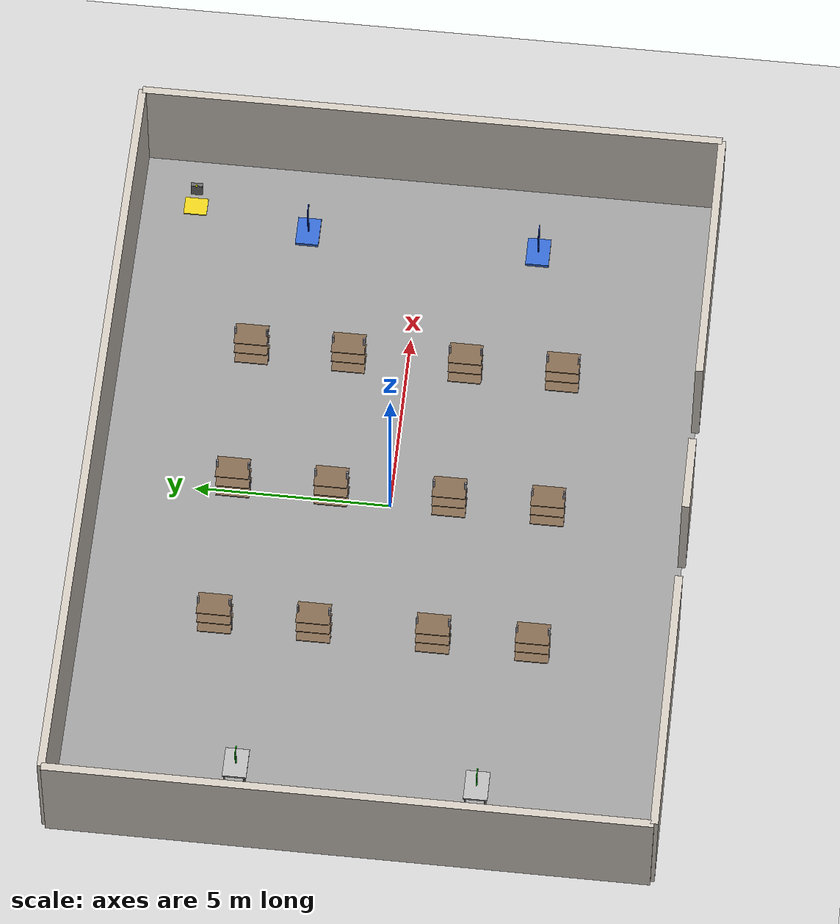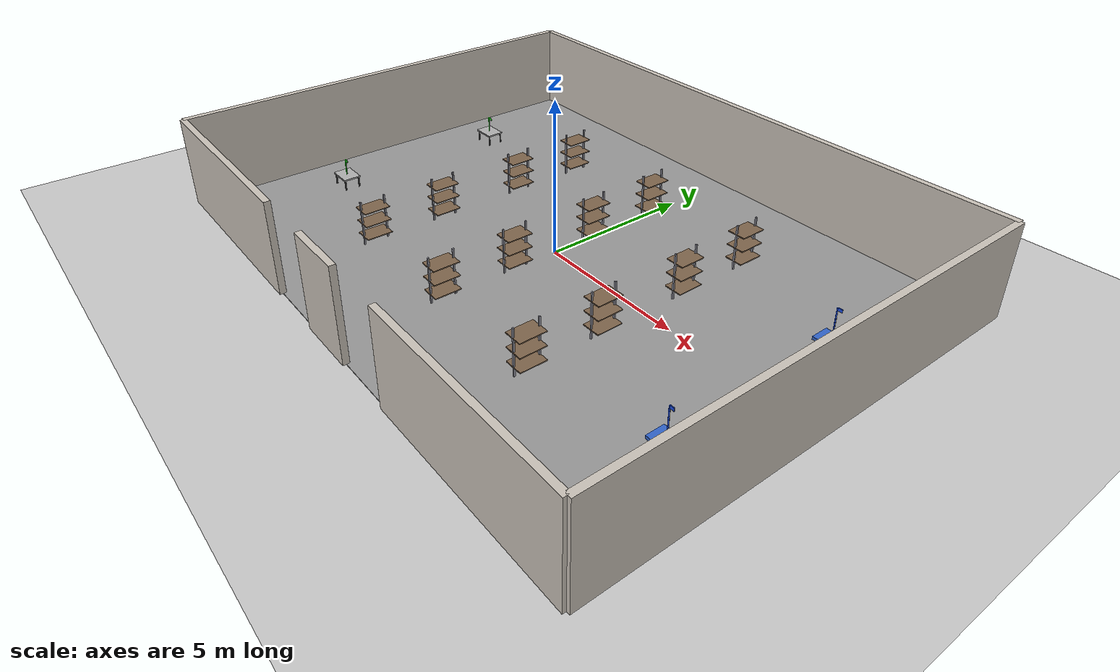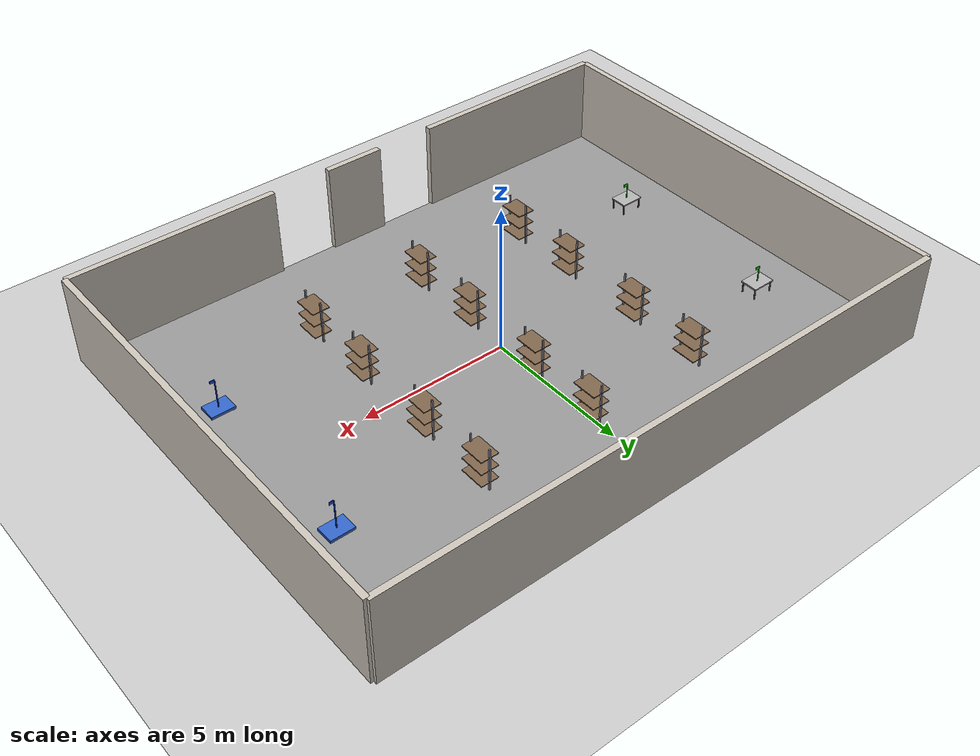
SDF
<?xml version="1.0"?>
<sdf version="1.6">
  <world name="warehouse">

    <!-- Physics -->
    <physics type="ode">
      <max_step_size>0.001</max_step_size>
      <real_time_factor>1.0</real_time_factor>
      <real_time_update_rate>1000</real_time_update_rate>
    </physics>

    <!-- Lighting -->
    <light name="sun" type="directional">
      <cast_shadows>true</cast_shadows>
      <pose>0 0 10 0 0 0</pose>
      <diffuse>0.8 0.8 0.8 1</diffuse>
      <specular>0.2 0.2 0.2 1</specular>
      <direction>-0.5 0.1 -0.9</direction>
    </light>

    <light name="overhead_1" type="point">
      <pose>-5 0 2.8 0 0 0</pose>
      <diffuse>0.9 0.9 0.85 1</diffuse>
      <attenuation>
        <range>15</range>
        <constant>0.3</constant>
        <linear>0.01</linear>
        <quadratic>0.001</quadratic>
      </attenuation>
    </light>

    <light name="overhead_2" type="point">
      <pose>5 0 2.8 0 0 0</pose>
      <diffuse>0.9 0.9 0.85 1</diffuse>
      <attenuation>
        <range>15</range>
        <constant>0.3</constant>
        <linear>0.01</linear>
        <quadratic>0.001</quadratic>
      </attenuation>
    </light>

    <!-- Ground plane (fallback) -->
    <include>
      <uri>model://ground_plane</uri>
    </include>

    <!-- Warehouse building shell -->
    <include>
      <uri>model://warehouse_building</uri>
      <pose>0 0 0 0 0 0</pose>
    </include>

    <!-- SHELVING AISLES (4 aisles, 3 shelves each)   -->
    <!-- Aisles run along X-axis, spaced along Y      -->

    <!-- Aisle 1 (Y = -4) -->
    <include><uri>model://shelf_unit</uri><name>shelf_1a</name><pose>-4 -4 0 0 0 0</pose></include>
    <include><uri>model://shelf_unit</uri><name>shelf_1b</name><pose>0  -4 0 0 0 0</pose></include>
    <include><uri>model://shelf_unit</uri><name>shelf_1c</name><pose>4  -4 0 0 0 0</pose></include>

    <!-- Aisle 2 (Y = -1.5) -->
    <include><uri>model://shelf_unit</uri><name>shelf_2a</name><pose>-4 -1.5 0 0 0 0</pose></include>
    <include><uri>model://shelf_unit</uri><name>shelf_2b</name><pose>0  -1.5 0 0 0 0</pose></include>
    <include><uri>model://shelf_unit</uri><name>shelf_2c</name><pose>4  -1.5 0 0 0 0</pose></include>

    <!-- Aisle 3 (Y = 1.5) -->
    <include><uri>model://shelf_unit</uri><name>shelf_3a</name><pose>-4 1.5 0 0 0 0</pose></include>
    <include><uri>model://shelf_unit</uri><name>shelf_3b</name><pose>0  1.5 0 0 0 0</pose></include>
    <include><uri>model://shelf_unit</uri><name>shelf_3c</name><pose>4  1.5 0 0 0 0</pose></include>

    <!-- Aisle 4 (Y = 4) -->
    <include><uri>model://shelf_unit</uri><name>shelf_4a</name><pose>-4 4 0 0 0 0</pose></include>
    <include><uri>model://shelf_unit</uri><name>shelf_4b</name><pose>0  4 0 0 0 0</pose></include>
    <include><uri>model://shelf_unit</uri><name>shelf_4c</name><pose>4  4 0 0 0 0</pose></include>

    <!-- STATIONS                                      -->

    <!-- Pickup stations (west side, green markers) -->
    <include>
      <uri>model://pickup_station</uri>
      <name>pickup_A</name>
      <pose>-8 -3 0 0 0 0</pose>
    </include>
    <include>
      <uri>model://pickup_station</uri>
      <name>pickup_B</name>
      <pose>-8 3 0 0 0 0</pose>
    </include>

    <!-- Delivery stations (east side, blue markers) -->
    <include>
      <uri>model://delivery_station</uri>
      <name>delivery_D1</name>
      <pose>8 -3 0 0 0 0</pose>
    </include>
    <include>
      <uri>model://delivery_station</uri>
      <name>delivery_D2</name>
      <pose>8 3 0 0 0 0</pose>
    </include>

    <!-- Charging station (northeast corner) -->
    <include>
      <uri>model://charging_station</uri>
      <name>charging</name>
      <pose>8.5 6 0 0 0 1.5708</pose>
    </include>

    <!-- Human actors disabled for headless/Docker compatibility -->

  </world>
</sdf>

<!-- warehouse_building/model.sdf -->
<sdf version="1.6">
  <model name="warehouse_building">
    <static>true</static>

    <!-- Floor -->
    <link name="floor">
      <pose>0 0 0.0 0 0 0</pose>
      <visual name="visual">
        <geometry><plane><normal>0 0 1</normal><size>20 15</size></plane></geometry>
        <material>
          <ambient>0.55 0.55 0.55 1</ambient>
          <diffuse>0.6 0.6 0.6 1</diffuse>
        </material>
      </visual>
      <collision name="collision">
        <geometry><plane><normal>0 0 1</normal><size>20 15</size></plane></geometry>
      </collision>
    </link>

    <!-- North wall (back) -->
    <link name="north_wall">
      <pose>0 7.5 1.5 0 0 0</pose>
      <visual name="visual">
        <geometry><box><size>20 0.2 3.0</size></box></geometry>
        <material>
          <ambient>0.75 0.72 0.68 1</ambient>
          <diffuse>0.8 0.77 0.73 1</diffuse>
        </material>
      </visual>
      <collision name="collision">
        <geometry><box><size>20 0.2 3.0</size></box></geometry>
      </collision>
    </link>

    <!-- South wall (front, with dock door openings) -->
    <!-- Left segment -->
    <link name="south_wall_left">
      <pose>-6.5 -7.5 1.5 0 0 0</pose>
      <visual name="visual">
        <geometry><box><size>7 0.2 3.0</size></box></geometry>
        <material>
          <ambient>0.75 0.72 0.68 1</ambient>
          <diffuse>0.8 0.77 0.73 1</diffuse>
        </material>
      </visual>
      <collision name="collision">
        <geometry><box><size>7 0.2 3.0</size></box></geometry>
      </collision>
    </link>

    <!-- Center segment (between dock doors) -->
    <link name="south_wall_center">
      <pose>0 -7.5 1.5 0 0 0</pose>
      <visual name="visual">
        <geometry><box><size>2 0.2 3.0</size></box></geometry>
        <material>
          <ambient>0.75 0.72 0.68 1</ambient>
          <diffuse>0.8 0.77 0.73 1</diffuse>
        </material>
      </visual>
      <collision name="collision">
        <geometry><box><size>2 0.2 3.0</size></box></geometry>
      </collision>
    </link>

    <!-- Right segment -->
    <link name="south_wall_right">
      <pose>6.5 -7.5 1.5 0 0 0</pose>
      <visual name="visual">
        <geometry><box><size>7 0.2 3.0</size></box></geometry>
        <material>
          <ambient>0.75 0.72 0.68 1</ambient>
          <diffuse>0.8 0.77 0.73 1</diffuse>
        </material>
      </visual>
      <collision name="collision">
        <geometry><box><size>7 0.2 3.0</size></box></geometry>
      </collision>
    </link>

    <!-- East wall -->
    <link name="east_wall">
      <pose>10 0 1.5 0 0 0</pose>
      <visual name="visual">
        <geometry><box><size>0.2 15 3.0</size></box></geometry>
        <material>
          <ambient>0.75 0.72 0.68 1</ambient>
          <diffuse>0.8 0.77 0.73 1</diffuse>
        </material>
      </visual>
      <collision name="collision">
        <geometry><box><size>0.2 15 3.0</size></box></geometry>
      </collision>
    </link>

    <!-- West wall -->
    <link name="west_wall">
      <pose>-10 0 1.5 0 0 0</pose>
      <visual name="visual">
        <geometry><box><size>0.2 15 3.0</size></box></geometry>
        <material>
          <ambient>0.75 0.72 0.68 1</ambient>
          <diffuse>0.8 0.77 0.73 1</diffuse>
        </material>
      </visual>
      <collision name="collision">
        <geometry><box><size>0.2 15 3.0</size></box></geometry>
      </collision>
    </link>

  </model>
</sdf>

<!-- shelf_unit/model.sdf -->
<sdf version="1.6">
  <model name="shelf_unit">
    <static>true</static>

    <!-- Left upright -->
    <link name="left_upright">
      <pose>0 -0.4 0.75 0 0 0</pose>
      <visual name="visual">
        <geometry><box><size>0.05 0.05 1.5</size></box></geometry>
        <material>
          <ambient>0.5 0.5 0.55 1</ambient>
          <diffuse>0.6 0.6 0.65 1</diffuse>
        </material>
      </visual>
      <collision name="collision">
        <geometry><box><size>0.05 0.05 1.5</size></box></geometry>
      </collision>
    </link>

    <!-- Right upright -->
    <link name="right_upright">
      <pose>0 0.4 0.75 0 0 0</pose>
      <visual name="visual">
        <geometry><box><size>0.05 0.05 1.5</size></box></geometry>
        <material>
          <ambient>0.5 0.5 0.55 1</ambient>
          <diffuse>0.6 0.6 0.65 1</diffuse>
        </material>
      </visual>
      <collision name="collision">
        <geometry><box><size>0.05 0.05 1.5</size></box></geometry>
      </collision>
    </link>

    <!-- Bottom shelf -->
    <link name="shelf_bottom">
      <pose>0 0 0.3 0 0 0</pose>
      <visual name="visual">
        <geometry><box><size>0.6 0.85 0.03</size></box></geometry>
        <material>
          <ambient>0.4 0.3 0.2 1</ambient>
          <diffuse>0.5 0.4 0.3 1</diffuse>
        </material>
      </visual>
      <collision name="collision">
        <geometry><box><size>0.6 0.85 0.03</size></box></geometry>
      </collision>
    </link>

    <!-- Middle shelf -->
    <link name="shelf_middle">
      <pose>0 0 0.75 0 0 0</pose>
      <visual name="visual">
        <geometry><box><size>0.6 0.85 0.03</size></box></geometry>
        <material>
          <ambient>0.4 0.3 0.2 1</ambient>
          <diffuse>0.5 0.4 0.3 1</diffuse>
        </material>
      </visual>
      <collision name="collision">
        <geometry><box><size>0.6 0.85 0.03</size></box></geometry>
      </collision>
    </link>

    <!-- Top shelf -->
    <link name="shelf_top">
      <pose>0 0 1.2 0 0 0</pose>
      <visual name="visual">
        <geometry><box><size>0.6 0.85 0.03</size></box></geometry>
        <material>
          <ambient>0.4 0.3 0.2 1</ambient>
          <diffuse>0.5 0.4 0.3 1</diffuse>
        </material>
      </visual>
      <collision name="collision">
        <geometry><box><size>0.6 0.85 0.03</size></box></geometry>
      </collision>
    </link>

  </model>
</sdf>

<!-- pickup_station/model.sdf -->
<sdf version="1.6">
  <model name="pickup_station">
    <static>true</static>

    <!-- Table surface -->
    <link name="table">
      <pose>0 0 0.4 0 0 0</pose>
      <visual name="visual">
        <geometry><box><size>0.8 0.6 0.05</size></box></geometry>
        <material>
          <ambient>0.6 0.6 0.6 1</ambient>
          <diffuse>0.7 0.7 0.7 1</diffuse>
        </material>
      </visual>
      <collision name="collision">
        <geometry><box><size>0.8 0.6 0.05</size></box></geometry>
      </collision>
    </link>

    <!-- Table legs -->
    <link name="leg1">
      <pose>0.35 0.25 0.19 0 0 0</pose>
      <visual name="visual">
        <geometry><cylinder><radius>0.025</radius><length>0.375</length></cylinder></geometry>
        <material><diffuse>0.4 0.4 0.4 1</diffuse></material>
      </visual>
      <collision name="collision">
        <geometry><cylinder><radius>0.025</radius><length>0.375</length></cylinder></geometry>
      </collision>
    </link>

    <link name="leg2">
      <pose>-0.35 0.25 0.19 0 0 0</pose>
      <visual name="visual">
        <geometry><cylinder><radius>0.025</radius><length>0.375</length></cylinder></geometry>
        <material><diffuse>0.4 0.4 0.4 1</diffuse></material>
      </visual>
      <collision name="collision">
        <geometry><cylinder><radius>0.025</radius><length>0.375</length></cylinder></geometry>
      </collision>
    </link>

    <link name="leg3">
      <pose>0.35 -0.25 0.19 0 0 0</pose>
      <visual name="visual">
        <geometry><cylinder><radius>0.025</radius><length>0.375</length></cylinder></geometry>
        <material><diffuse>0.4 0.4 0.4 1</diffuse></material>
      </visual>
      <collision name="collision">
        <geometry><cylinder><radius>0.025</radius><length>0.375</length></cylinder></geometry>
      </collision>
    </link>

    <link name="leg4">
      <pose>-0.35 -0.25 0.19 0 0 0</pose>
      <visual name="visual">
        <geometry><cylinder><radius>0.025</radius><length>0.375</length></cylinder></geometry>
        <material><diffuse>0.4 0.4 0.4 1</diffuse></material>
      </visual>
      <collision name="collision">
        <geometry><cylinder><radius>0.025</radius><length>0.375</length></cylinder></geometry>
      </collision>
    </link>

    <!-- Green marker pole -->
    <link name="marker_pole">
      <pose>0.0 0.0 0.7 0 0 0</pose>
      <visual name="visual">
        <geometry><cylinder><radius>0.02</radius><length>0.55</length></cylinder></geometry>
        <material>
          <ambient>0.1 0.8 0.1 1</ambient>
          <diffuse>0.1 0.9 0.1 1</diffuse>
        </material>
      </visual>
    </link>

    <!-- Green marker flag -->
    <link name="marker_flag">
      <pose>0.08 0.0 0.95 0 0 0</pose>
      <visual name="visual">
        <geometry><box><size>0.15 0.02 0.1</size></box></geometry>
        <material>
          <ambient>0.1 0.8 0.1 1</ambient>
          <diffuse>0.1 0.9 0.1 1</diffuse>
        </material>
      </visual>
    </link>

  </model>
</sdf>

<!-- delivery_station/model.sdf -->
<sdf version="1.6">
  <model name="delivery_station">
    <static>true</static>

    <!-- Drop zone platform -->
    <link name="platform">
      <pose>0 0 0.05 0 0 0</pose>
      <visual name="visual">
        <geometry><box><size>0.8 0.6 0.1</size></box></geometry>
        <material>
          <ambient>0.2 0.3 0.7 1</ambient>
          <diffuse>0.2 0.4 0.8 1</diffuse>
        </material>
      </visual>
      <collision name="collision">
        <geometry><box><size>0.8 0.6 0.1</size></box></geometry>
      </collision>
    </link>

    <!-- Blue marker pole -->
    <link name="marker_pole">
      <pose>0.0 0.0 0.6 0 0 0</pose>
      <visual name="visual">
        <geometry><cylinder><radius>0.02</radius><length>1.0</length></cylinder></geometry>
        <material>
          <ambient>0.1 0.2 0.8 1</ambient>
          <diffuse>0.1 0.3 0.9 1</diffuse>
        </material>
      </visual>
    </link>

    <!-- Blue marker flag -->
    <link name="marker_flag">
      <pose>0.08 0.0 1.08 0 0 0</pose>
      <visual name="visual">
        <geometry><box><size>0.15 0.02 0.1</size></box></geometry>
        <material>
          <ambient>0.1 0.2 0.8 1</ambient>
          <diffuse>0.1 0.3 0.9 1</diffuse>
        </material>
      </visual>
    </link>

  </model>
</sdf>

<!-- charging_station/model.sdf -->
<sdf version="1.6">
  <model name="charging_station">
    <static>true</static>

    <!-- Charging pad -->
    <link name="pad">
      <pose>0 0 0.02 0 0 0</pose>
      <visual name="visual">
        <geometry><box><size>0.6 0.5 0.04</size></box></geometry>
        <material>
          <ambient>0.8 0.7 0.1 1</ambient>
          <diffuse>0.9 0.8 0.1 1</diffuse>
        </material>
      </visual>
      <collision name="collision">
        <geometry><box><size>0.6 0.5 0.04</size></box></geometry>
      </collision>
    </link>

    <!-- Charger unit (wall-mounted box) -->
    <link name="charger_box">
      <pose>0.0 -0.3 0.4 0 0 0</pose>
      <visual name="visual">
        <geometry><box><size>0.3 0.1 0.4</size></box></geometry>
        <material>
          <ambient>0.3 0.3 0.3 1</ambient>
          <diffuse>0.4 0.4 0.4 1</diffuse>
        </material>
      </visual>
      <collision name="collision">
        <geometry><box><size>0.3 0.1 0.4</size></box></geometry>
      </collision>
    </link>

    <!-- Yellow indicator light -->
    <link name="indicator">
      <pose>0.0 -0.24 0.62 0 0 0</pose>
      <visual name="visual">
        <geometry><sphere><radius>0.03</radius></sphere></geometry>
        <material>
          <ambient>0.9 0.9 0.0 1</ambient>
          <diffuse>1.0 1.0 0.0 1</diffuse>
          <emissive>0.5 0.5 0.0 1</emissive>
        </material>
      </visual>
    </link>

  </model>
</sdf>
